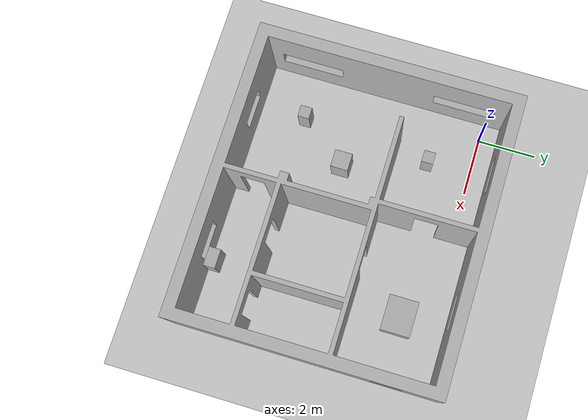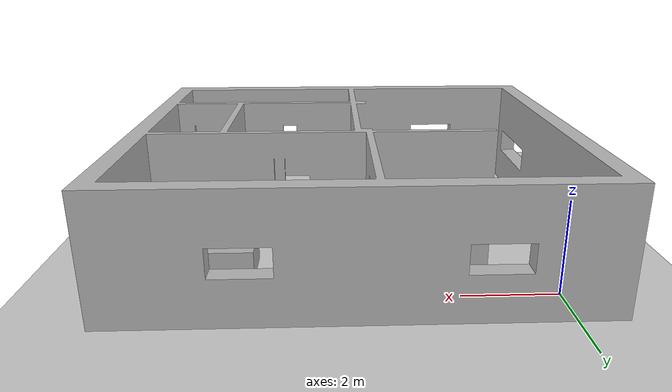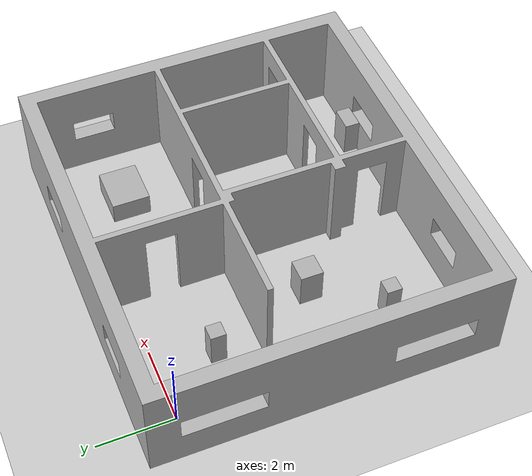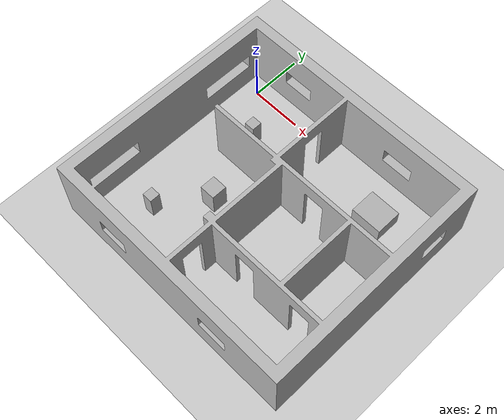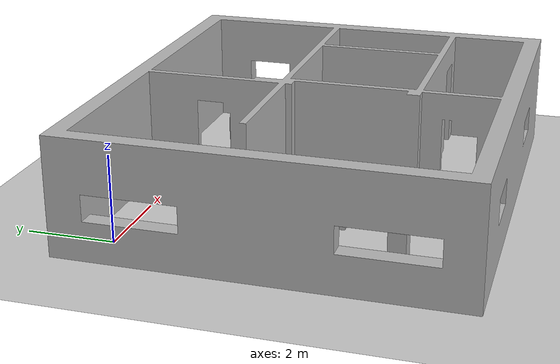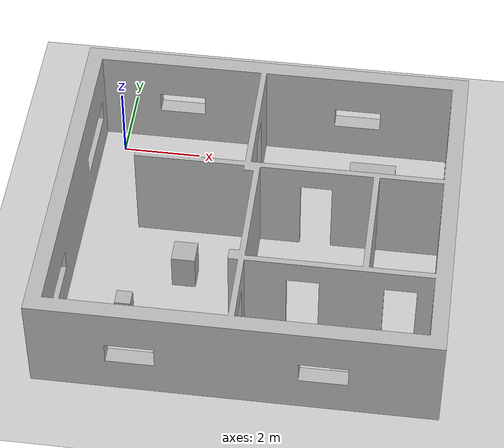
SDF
<sdf version='1.9'>
  <world name='full_world'>
    <gravity>0 0 -9.81</gravity>
    <scene>
      <ambient>0.4 0.4 0.4 1</ambient>
      <background>0.7 0.7 0.7 1</background>
      <shadows>true</shadows>
    </scene>
    <magnetic_field>6e-06 2.3e-05 -4.2e-05</magnetic_field>
    <atmosphere type='adiabatic'/>
    <physics type='ode'>
      <max_step_size>0.001</max_step_size>
      <real_time_factor>1</real_time_factor>
      <real_time_update_rate>1000</real_time_update_rate>
    </physics>
    <model name='ground_plane'>
      <static>true</static>
      <link name='link'>
        <collision name='collision'>
          <geometry>
            <plane>
              <normal>0 0 1</normal>
              <size>100 100</size>
            </plane>
          </geometry>
          <surface>
            <friction>
              <ode/>
            </friction>
            <bounce/>
            <contact/>
          </surface>
        </collision>
        <visual name='visual'>
          <geometry>
            <plane>
              <normal>0 0 1</normal>
              <size>100 100</size>
            </plane>
          </geometry>
          <material>
            <ambient>0.8 0.8 0.8 1</ambient>
            <diffuse>0.8 0.8 0.8 1</diffuse>
            <specular>0.8 0.8 0.8 1</specular>
          </material>
        </visual>
        <pose>0 0 0 0 -0 0</pose>
        <inertial>
          <pose>0 0 0 0 -0 0</pose>
          <mass>1</mass>
          <inertia>
            <ixx>1</ixx>
            <ixy>0</ixy>
            <ixz>0</ixz>
            <iyy>1</iyy>
            <iyz>0</iyz>
            <izz>1</izz>
          </inertia>
        </inertial>
        <enable_wind>false</enable_wind>
      </link>
      <pose>0 0 0 0 -0 0</pose>
      <self_collide>false</self_collide>
    </model>
    <model name='static_environment'>
      <static>true</static>
      <pose>-1 1 0 0 -0 0</pose>
      <link name='link'>
        <visual name='visual'>
          <geometry>
            <mesh>
              <uri>file:///home/simenza/dev_ws/install/cleanbit_simulate/share/cleanbit_simulate/worlds/../meshes/casa_spazzino.stl</uri>
              <scale>0.001 0.001 0.001</scale>
            </mesh>
          </geometry>
        </visual>
        <collision name='collision'>
          <geometry>
            <mesh>
              <uri>file:///home/simenza/dev_ws/install/cleanbit_simulate/share/cleanbit_simulate/worlds/../meshes/casa_spazzino.stl</uri>
              <scale>0.001 0.001 0.001</scale>
            </mesh>
          </geometry>
        </collision>
        <pose>0 0 0 0 -0 0</pose>
        <inertial>
          <pose>0 0 0 0 -0 0</pose>
          <mass>1</mass>
          <inertia>
            <ixx>1</ixx>
            <ixy>0</ixy>
            <ixz>0</ixz>
            <iyy>1</iyy>
            <iyz>0</iyz>
            <izz>1</izz>
          </inertia>
        </inertial>
        <enable_wind>false</enable_wind>
      </link>
      <self_collide>false</self_collide>
    </model>
    <model name='tavolo'>
      <pose>2.27571 -4.2915 0.5 0 0 0</pose>
      <link name='tavolo_link'>
        <inertial>
          <inertia>
            <ixx>0.16666</ixx>
            <ixy>0</ixy>
            <ixz>0</ixz>
            <iyy>0.16666</iyy>
            <iyz>0</iyz>
            <izz>0.16666</izz>
          </inertia>
          <mass>1</mass>
          <pose>0 0 0 0 -0 0</pose>
        </inertial>
        <collision name='tavolo_collision'>
          <geometry>
            <box>
              <size>0.6 0.6 1</size>
            </box>
          </geometry>
          <surface>
            <friction>
              <ode/>
            </friction>
            <bounce/>
            <contact/>
          </surface>
        </collision>
        <visual name='tavolo_visual'>
          <geometry>
            <box>
              <size>0.6 0.6 1</size>
            </box>
          </geometry>
          <material>
            <ambient>0.3 0.3 0.3 1</ambient>
            <diffuse>0.7 0.7 0.7 1</diffuse>
            <specular>1 1 1 1</specular>
          </material>
        </visual>
        <pose>0 0 0 0 -0 0</pose>
        <enable_wind>false</enable_wind>
      </link>
      <static>false</static>
      <self_collide>false</self_collide>
    </model>
    <model name='armadietto'>
      <pose>6.6422 -7.4 0.5 -0 0 0</pose>
      <link name='armadietto_link'>
        <inertial>
          <inertia>
            <ixx>0.16666</ixx>
            <ixy>0</ixy>
            <ixz>0</ixz>
            <iyy>0.16666</iyy>
            <iyz>0</iyz>
            <izz>0.16666</izz>
          </inertia>
          <mass>1</mass>
          <pose>0 0 0 0 -0 0</pose>
        </inertial>
        <collision name='armadietto_collision'>
          <geometry>
            <box>
              <size>0.65 0.4 1</size>
            </box>
          </geometry>
          <surface>
            <friction>
              <ode/>
            </friction>
            <bounce/>
            <contact/>
          </surface>
        </collision>
        <visual name='armadietto_visual'>
          <geometry>
            <box>
              <size>0.65 0.4 1</size>
            </box>
          </geometry>
          <material>
            <ambient>0.3 0.3 0.3 1</ambient>
            <diffuse>0.7 0.7 0.7 1</diffuse>
            <specular>1 1 1 1</specular>
          </material>
        </visual>
        <pose>0 0 0 0 -0 0</pose>
        <enable_wind>false</enable_wind>
      </link>
      <static>false</static>
      <self_collide>false</self_collide>
    </model>
    <model name='tavolino'>
      <pose>1.34974 -1.50775 0.5 0 -0 0</pose>
      <link name='tavolino_link'>
        <inertial>
          <inertia>
            <ixx>0.16666</ixx>
            <ixy>0</ixy>
            <ixz>0</ixz>
            <iyy>0.16666</iyy>
            <iyz>0</iyz>
            <izz>0.16666</izz>
          </inertia>
          <mass>1</mass>
          <pose>0 0 0 0 -0 0</pose>
        </inertial>
        <collision name='box_collision'>
          <geometry>
            <box>
              <size>0.4 0.4 1</size>
            </box>
          </geometry>
          <surface>
            <friction>
              <ode/>
            </friction>
            <bounce/>
            <contact/>
          </surface>
        </collision>
        <visual name='tavolino_visual'>
          <geometry>
            <box>
              <size>0.4 0.4 1</size>
            </box>
          </geometry>
          <material>
            <ambient>0.3 0.3 0.3 1</ambient>
            <diffuse>0.7 0.7 0.7 1</diffuse>
            <specular>1 1 1 1</specular>
          </material>
        </visual>
        <pose>0 0 0 0 -0 0</pose>
        <enable_wind>false</enable_wind>
      </link>
      <static>false</static>
      <self_collide>false</self_collide>
    </model>
    <model name='letto'>
      <pose>6.71503 -0.979408 0.5 0 -0 0</pose>
      <link name='letto_link'>
        <inertial>
          <inertia>
            <ixx>0.16666</ixx>
            <ixy>0</ixy>
            <ixz>0</ixz>
            <iyy>0.16666</iyy>
            <iyz>0</iyz>
            <izz>0.16666</izz>
          </inertia>
          <mass>1</mass>
          <pose>0 0 0 0 -0 0</pose>
        </inertial>
        <collision name='letto_collision'>
          <geometry>
            <box>
              <size>1.2 1 0.6</size>
            </box>
          </geometry>
          <surface>
            <friction>
              <ode/>
            </friction>
            <bounce/>
            <contact/>
          </surface>
        </collision>
        <visual name='box_visual'>
          <geometry>
            <box>
              <size>1.2 1 0.6</size>
            </box>
          </geometry>
          <material>
            <ambient>0.3 0.3 0.3 1</ambient>
            <diffuse>0.7 0.7 0.7 1</diffuse>
            <specular>1 1 1 1</specular>
          </material>
        </visual>
        <pose>0 0 0 0 -0 0</pose>
        <enable_wind>false</enable_wind>
      </link>
      <static>false</static>
      <self_collide>false</self_collide>
    </model>
    <model name='box_1_1'>
      <pose>1.00399 -5.97406 0.5 0 0 -0</pose>
      <link name='box_link'>
        <inertial>
          <inertia>
            <ixx>0.16666</ixx>
            <ixy>0</ixy>
            <ixz>0</ixz>
            <iyy>0.16666</iyy>
            <iyz>0</iyz>
            <izz>0.16666</izz>
          </inertia>
          <mass>1</mass>
          <pose>0 0 0 0 -0 0</pose>
        </inertial>
        <collision name='box_collision'>
          <geometry>
            <box>
              <size>0.4 0.4 1</size>
            </box>
          </geometry>
          <surface>
            <friction>
              <ode/>
            </friction>
            <bounce/>
            <contact/>
          </surface>
        </collision>
        <visual name='box_visual'>
          <geometry>
            <box>
              <size>0.4 0.4 1</size>
            </box>
          </geometry>
          <material>
            <ambient>0.3 0.3 0.3 1</ambient>
            <diffuse>0.7 0.7 0.7 1</diffuse>
            <specular>1 1 1 1</specular>
          </material>
        </visual>
        <pose>0 0 0 0 -0 0</pose>
        <enable_wind>false</enable_wind>
      </link>
      <static>false</static>
      <self_collide>false</self_collide>
    </model>
  </world>
</sdf>
